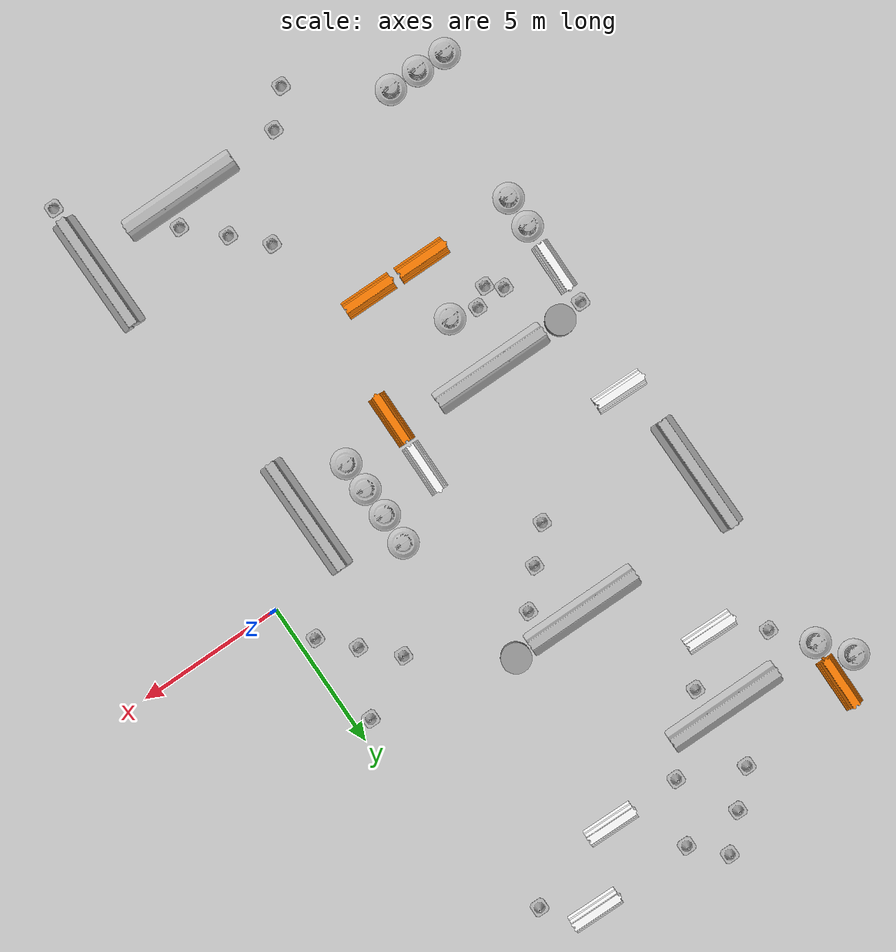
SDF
<sdf version="1.6">
 <world name="default">
  <model name="ground_plane">
   <static>1</static>
   <link name="link">
    <collision name="collision">
     <geometry><plane><normal>0 0 1</normal><size>100 100</size></plane></geometry>
     <surface>
      <contact><collide_bitmask>65535</collide_bitmask></contact>
      <friction><ode><mu>100</mu><mu2>50</mu2></ode></friction>
     </surface>
    </collision>
    <visual name="visual">
     <cast_shadows>0</cast_shadows>
     <geometry><plane><normal>0 0 1</normal><size>100 100</size></plane></geometry>
     <material>
      <script><uri>file://media/materials/scripts/gazebo.material</uri><name>Gazebo/Grey</name></script>
     </material>
    </visual>
   </link>
  </model>
  <model name="Construction Cone_0">
   <link name="link">
    <collision name="collision">
     <geometry>
      <mesh><scale>10 10 10</scale><uri>model://construction_cone/meshes/construction_cone.dae</uri></mesh>
     </geometry>
    </collision>
    <visual name="visual">
     <geometry>
      <mesh><scale>10 10 10</scale><uri>model://construction_cone/meshes/construction_cone.dae</uri></mesh>
     </geometry>
    </visual>
    <inertial>
     <inertia><ixx>1</ixx><ixy>0</ixy><ixz>0</ixz><iyy>1</iyy><iyz>0</iyz><izz>1</izz></inertia>
     <mass>1</mass>
    </inertial>
   </link>
   <pose>-7.48377 14.4957 -0 0 -1e-06 0</pose>
  </model>
  <model name="Construction Cone_0_clone">
   <link name="link">
    <collision name="collision">
     <geometry>
      <mesh><scale>10 10 10</scale><uri>model://construction_cone/meshes/construction_cone.dae</uri></mesh>
     </geometry>
    </collision>
    <visual name="visual">
     <geometry>
      <mesh><scale>10 10 10</scale><uri>model://construction_cone/meshes/construction_cone.dae</uri></mesh>
     </geometry>
    </visual>
    <inertial>
     <inertia><ixx>1</ixx><ixy>0</ixy><ixz>0</ixz><iyy>1</iyy><iyz>0</iyz><izz>1</izz></inertia>
     <mass>1</mass>
    </inertial>
   </link>
   <pose>-8.4848 13.4919 -0 0 -1e-06 0</pose>
  </model>
  <model name="Construction Cone_0_clone_1">
   <link name="link">
    <collision name="collision">
     <geometry>
      <mesh><scale>10 10 10</scale><uri>model://construction_cone/meshes/construction_cone.dae</uri></mesh>
     </geometry>
    </collision>
    <visual name="visual">
     <geometry>
      <mesh><scale>10 10 10</scale><uri>model://construction_cone/meshes/construction_cone.dae</uri></mesh>
     </geometry>
    </visual>
    <inertial>
     <inertia><ixx>1</ixx><ixy>0</ixy><ixz>0</ixz><iyy>1</iyy><iyz>0</iyz><izz>1</izz></inertia>
     <mass>1</mass>
    </inertial>
   </link>
   <pose>-6.51148 13.5032 -0 0 -1e-06 0</pose>
  </model>
  <model name="drc_practice_white_jersey_barrier_clone">
   <static>1</static>
   <link name="link">
    <visual name="visual">
     <geometry>
      <mesh><uri>model://drc_practice_white_jersey_barrier/meshes/jersey_barrier.dae</uri></mesh>
     </geometry>
    </visual>
    <collision name="collision">
     <geometry>
      <mesh><uri>model://drc_practice_white_jersey_barrier/meshes/jersey_barrier.dae</uri></mesh>
     </geometry>
    </collision>
   </link>
   <pose>-2.98815 13.5359 0 0 0 -1.58176</pose>
  </model>
  <model name="drc_practice_white_jersey_barrier_clone_clone">
   <static>1</static>
   <link name="link">
    <visual name="visual">
     <geometry>
      <mesh><uri>model://drc_practice_white_jersey_barrier/meshes/jersey_barrier.dae</uri></mesh>
     </geometry>
    </visual>
    <collision name="collision">
     <geometry>
      <mesh><uri>model://drc_practice_white_jersey_barrier/meshes/jersey_barrier.dae</uri></mesh>
     </geometry>
    </collision>
   </link>
   <pose>-4.91611 11.5688 0 0 0 -1.58176</pose>
  </model>
  <model name="Construction Cone_0_clone_1_clone">
   <link name="link">
    <collision name="collision">
     <geometry>
      <mesh><scale>10 10 10</scale><uri>model://construction_cone/meshes/construction_cone.dae</uri></mesh>
     </geometry>
    </collision>
    <visual name="visual">
     <geometry>
      <mesh><scale>10 10 10</scale><uri>model://construction_cone/meshes/construction_cone.dae</uri></mesh>
     </geometry>
    </visual>
    <inertial>
     <inertia><ixx>1</ixx><ixy>0</ixy><ixz>0</ixz><iyy>1</iyy><iyz>0</iyz><izz>1</izz></inertia>
     <mass>1</mass>
    </inertial>
   </link>
   <pose>-1.56789 12.4756 -0 0 -1e-06 0</pose>
  </model>
  <model name="Construction Cone_0_clone_0_clone">
   <link name="link">
    <collision name="collision">
     <geometry>
      <mesh><scale>10 10 10</scale><uri>model://construction_cone/meshes/construction_cone.dae</uri></mesh>
     </geometry>
    </collision>
    <visual name="visual">
     <geometry>
      <mesh><scale>10 10 10</scale><uri>model://construction_cone/meshes/construction_cone.dae</uri></mesh>
     </geometry>
    </visual>
    <inertial>
     <inertia><ixx>1</ixx><ixy>0</ixy><ixz>0</ixz><iyy>1</iyy><iyz>0</iyz><izz>1</izz></inertia>
     <mass>1</mass>
    </inertial>
   </link>
   <pose>-12.5113 9.33697 -0 0 -1e-06 0</pose>
  </model>
  <model name="jersey_barrier_clone_clone">
   <static>1</static>
   <link name="link">
    <visual name="visual">
     <geometry><mesh><uri>model://jersey_barrier/meshes/jersey_barrier.dae</uri></mesh></geometry>
    </visual>
    <collision name="upright">
     <pose>0 0 0.5715 0 -0 0</pose>
     <geometry><box><size>4.06542 0.3063 1.143</size></box></geometry>
    </collision>
    <collision name="base">
     <pose>0 0 0.032258 0 -0 0</pose>
     <geometry><box><size>4.06542 0.8107 0.064516</size></box></geometry>
    </collision>
    <collision name="base2">
     <pose>0 0 0.1 0 -0 0</pose>
     <geometry><box><size>4.06542 0.65 0.1</size></box></geometry>
    </collision>
    <collision name="base3">
     <pose>0 0 0.2 0 -0 0</pose>
     <geometry><box><size>4.06542 0.5 0.1</size></box></geometry>
    </collision>
    <collision name="left-angle">
     <pose>0 -0.224 0.2401 0.9 -0 0</pose>
     <geometry><box><size>4.06542 0.5 0.064516</size></box></geometry>
    </collision>
    <collision name="right-angle">
     <pose>0 0.224 0.2401 -0.9 0 0</pose>
     <geometry><box><size>4.06542 0.5 0.064516</size></box></geometry>
    </collision>
   </link>
   <pose>-9.9787 10.5294 0 0 -0 0</pose>
  </model>
  <model name="Construction Cone_0_clone_0_clone_clone">
   <link name="link">
    <collision name="collision">
     <geometry>
      <mesh><scale>10 10 10</scale><uri>model://construction_cone/meshes/construction_cone.dae</uri></mesh>
     </geometry>
    </collision>
    <visual name="visual">
     <geometry>
      <mesh><scale>10 10 10</scale><uri>model://construction_cone/meshes/construction_cone.dae</uri></mesh>
     </geometry>
    </visual>
    <inertial>
     <inertia><ixx>1</ixx><ixy>0</ixy><ixz>0</ixz><iyy>1</iyy><iyz>0</iyz><izz>1</izz></inertia>
     <mass>1</mass>
    </inertial>
   </link>
   <pose>-9.53841 9.57947 -0 0 -1e-06 0</pose>
  </model>
  <model name="drc_practice_white_jersey_barrier_clone_clone_clone">
   <static>1</static>
   <link name="link">
    <visual name="visual">
     <geometry>
      <mesh><uri>model://drc_practice_white_jersey_barrier/meshes/jersey_barrier.dae</uri></mesh>
     </geometry>
    </visual>
    <collision name="collision">
     <geometry>
      <mesh><uri>model://drc_practice_white_jersey_barrier/meshes/jersey_barrier.dae</uri></mesh>
     </geometry>
    </collision>
   </link>
   <pose>-10.924 8.31727 0 0 0 -1.58176</pose>
  </model>
  <model name="Construction Cone_0_clone_0_clone_clone_clone">
   <link name="link">
    <collision name="collision">
     <geometry>
      <mesh><scale>10 10 10</scale><uri>model://construction_cone/meshes/construction_cone.dae</uri></mesh>
     </geometry>
    </collision>
    <visual name="visual">
     <geometry>
      <mesh><scale>10 10 10</scale><uri>model://construction_cone/meshes/construction_cone.dae</uri></mesh>
     </geometry>
    </visual>
    <inertial>
     <inertia><ixx>1</ixx><ixy>0</ixy><ixz>0</ixz><iyy>1</iyy><iyz>0</iyz><izz>1</izz></inertia>
     <mass>1</mass>
    </inertial>
   </link>
   <pose>-7.42849 11.576 -0 0 -0 0</pose>
  </model>
  <model name="jersey_barrier_clone_clone_clone">
   <static>1</static>
   <link name="link">
    <visual name="visual">
     <geometry><mesh><uri>model://jersey_barrier/meshes/jersey_barrier.dae</uri></mesh></geometry>
    </visual>
    <collision name="upright">
     <pose>0 0 0.5715 0 -0 0</pose>
     <geometry><box><size>4.06542 0.3063 1.143</size></box></geometry>
    </collision>
    <collision name="base">
     <pose>0 0 0.032258 0 -0 0</pose>
     <geometry><box><size>4.06542 0.8107 0.064516</size></box></geometry>
    </collision>
    <collision name="base2">
     <pose>0 0 0.1 0 -0 0</pose>
     <geometry><box><size>4.06542 0.65 0.1</size></box></geometry>
    </collision>
    <collision name="base3">
     <pose>0 0 0.2 0 -0 0</pose>
     <geometry><box><size>4.06542 0.5 0.1</size></box></geometry>
    </collision>
    <collision name="left-angle">
     <pose>0 -0.224 0.2401 0.9 -0 0</pose>
     <geometry><box><size>4.06542 0.5 0.064516</size></box></geometry>
    </collision>
    <collision name="right-angle">
     <pose>0 0.224 0.2401 -0.9 0 0</pose>
     <geometry><box><size>4.06542 0.5 0.064516</size></box></geometry>
    </collision>
   </link>
   <pose>-13.4245 3.97341 0 0 0 -1.56391</pose>
  </model>
  <model name="drc_practice_white_jersey_barrier_clone_clone_clone_clone">
   <static>1</static>
   <link name="link">
    <visual name="visual">
     <geometry>
      <mesh><uri>model://drc_practice_white_jersey_barrier/meshes/jersey_barrier.dae</uri></mesh>
     </geometry>
    </visual>
    <collision name="collision">
     <geometry>
      <mesh><uri>model://drc_practice_white_jersey_barrier/meshes/jersey_barrier.dae</uri></mesh>
     </geometry>
    </collision>
   </link>
   <pose>-12.8698 0.433734 0 0 0 -1.58176</pose>
  </model>
  <model name="jersey_barrier_clone_clone_clone_0">
   <static>1</static>
   <link name="link">
    <visual name="visual">
     <geometry><mesh><uri>model://jersey_barrier/meshes/jersey_barrier.dae</uri></mesh></geometry>
    </visual>
    <collision name="upright">
     <pose>0 0 0.5715 0 -0 0</pose>
     <geometry><box><size>4.06542 0.3063 1.143</size></box></geometry>
    </collision>
    <collision name="base">
     <pose>0 0 0.032258 0 -0 0</pose>
     <geometry><box><size>4.06542 0.8107 0.064516</size></box></geometry>
    </collision>
    <collision name="base2">
     <pose>0 0 0.1 0 -0 0</pose>
     <geometry><box><size>4.06542 0.65 0.1</size></box></geometry>
    </collision>
    <collision name="base3">
     <pose>0 0 0.2 0 -0 0</pose>
     <geometry><box><size>4.06542 0.5 0.1</size></box></geometry>
    </collision>
    <collision name="left-angle">
     <pose>0 -0.224 0.2401 0.9 -0 0</pose>
     <geometry><box><size>4.06542 0.5 0.064516</size></box></geometry>
    </collision>
    <collision name="right-angle">
     <pose>0 0.224 0.2401 -0.9 0 0</pose>
     <geometry><box><size>4.06542 0.5 0.064516</size></box></geometry>
    </collision>
   </link>
   <pose>-8.01638 5.47012 0 0 -0 0</pose>
  </model>
  <model name="unit_cylinder">
   <pose>-5.42848 5.52156 0.499993 -1e-06 -0 -0</pose>
   <link name="link">
    <inertial>
     <mass>1</mass>
     <inertia><ixx>0.145833</ixx><ixy>0</ixy><ixz>0</ixz><iyy>0.145833</iyy><iyz>0</iyz><izz>0.125</izz></inertia>
    </inertial>
    <collision name="collision">
     <geometry><cylinder><radius>0.5</radius><length>1</length></cylinder></geometry>
    </collision>
    <visual name="visual">
     <geometry><cylinder><radius>0.5</radius><length>1</length></cylinder></geometry>
     <material>
      <script><name>Gazebo/Grey</name><uri>file://media/materials/scripts/gazebo.material</uri></script>
     </material>
    </visual>
   </link>
  </model>
  <model name="Construction Cone_0_clone_0_clone_clone_0">
   <link name="link">
    <collision name="collision">
     <geometry>
      <mesh><scale>10 10 10</scale><uri>model://construction_cone/meshes/construction_cone.dae</uri></mesh>
     </geometry>
    </collision>
    <visual name="visual">
     <geometry>
      <mesh><scale>10 10 10</scale><uri>model://construction_cone/meshes/construction_cone.dae</uri></mesh>
     </geometry>
    </visual>
    <inertial>
     <inertia><ixx>1</ixx><ixy>0</ixy><ixz>0</ixz><iyy>1</iyy><iyz>0</iyz><izz>1</izz></inertia>
     <mass>1</mass>
    </inertial>
   </link>
   <pose>-6.57528 4.55392 -0 0 -1e-06 0</pose>
  </model>
  <model name="Construction Cone_0_clone_0_clone_clone_1">
   <link name="link">
    <collision name="collision">
     <geometry>
      <mesh><scale>10 10 10</scale><uri>model://construction_cone/meshes/construction_cone.dae</uri></mesh>
     </geometry>
    </collision>
    <visual name="visual">
     <geometry>
      <mesh><scale>10 10 10</scale><uri>model://construction_cone/meshes/construction_cone.dae</uri></mesh>
     </geometry>
    </visual>
    <inertial>
     <inertia><ixx>1</ixx><ixy>0</ixy><ixz>0</ixz><iyy>1</iyy><iyz>0</iyz><izz>1</izz></inertia>
     <mass>1</mass>
    </inertial>
   </link>
   <pose>-7.55022 3.47181 -0 0 -1e-06 0</pose>
  </model>
  <model name="Construction Cone_0_clone_0_clone_clone_2">
   <link name="link">
    <collision name="collision">
     <geometry>
      <mesh><scale>10 10 10</scale><uri>model://construction_cone/meshes/construction_cone.dae</uri></mesh>
     </geometry>
    </collision>
    <visual name="visual">
     <geometry>
      <mesh><scale>10 10 10</scale><uri>model://construction_cone/meshes/construction_cone.dae</uri></mesh>
     </geometry>
    </visual>
    <inertial>
     <inertia><ixx>1</ixx><ixy>0</ixy><ixz>0</ixz><iyy>1</iyy><iyz>0</iyz><izz>1</izz></inertia>
     <mass>1</mass>
    </inertial>
   </link>
   <pose>-8.52384 2.47533 -0 0 -0 0</pose>
  </model>
  <model name="Construction Cone_0_clone_1_clone_1_clone">
   <link name="link">
    <collision name="collision">
     <geometry>
      <mesh><scale>10 10 10</scale><uri>model://construction_cone/meshes/construction_cone.dae</uri></mesh>
     </geometry>
    </collision>
    <visual name="visual">
     <geometry>
      <mesh><scale>10 10 10</scale><uri>model://construction_cone/meshes/construction_cone.dae</uri></mesh>
     </geometry>
    </visual>
    <inertial>
     <inertia><ixx>1</ixx><ixy>0</ixy><ixz>0</ixz><iyy>1</iyy><iyz>0</iyz><izz>1</izz></inertia>
     <mass>1</mass>
    </inertial>
   </link>
   <pose>-2.52061 3.47667 -0 0 -1e-06 0</pose>
  </model>
  <model name="Construction Cone_0_clone_1_clone_1_clone_0">
   <link name="link">
    <collision name="collision">
     <geometry>
      <mesh><scale>10 10 10</scale><uri>model://construction_cone/meshes/construction_cone.dae</uri></mesh>
     </geometry>
    </collision>
    <visual name="visual">
     <geometry>
      <mesh><scale>10 10 10</scale><uri>model://construction_cone/meshes/construction_cone.dae</uri></mesh>
     </geometry>
    </visual>
    <inertial>
     <inertia><ixx>1</ixx><ixy>0</ixy><ixz>0</ixz><iyy>1</iyy><iyz>0</iyz><izz>1</izz></inertia>
     <mass>1</mass>
    </inertial>
   </link>
   <pose>-1.49053 2.45106 -0 0 -1e-06 0</pose>
  </model>
  <model name="Construction Cone_0_clone_1_clone_1_clone_1">
   <link name="link">
    <collision name="collision">
     <geometry>
      <mesh><scale>10 10 10</scale><uri>model://construction_cone/meshes/construction_cone.dae</uri></mesh>
     </geometry>
    </collision>
    <visual name="visual">
     <geometry>
      <mesh><scale>10 10 10</scale><uri>model://construction_cone/meshes/construction_cone.dae</uri></mesh>
     </geometry>
    </visual>
    <inertial>
     <inertia><ixx>1</ixx><ixy>0</ixy><ixz>0</ixz><iyy>1</iyy><iyz>0</iyz><izz>1</izz></inertia>
     <mass>1</mass>
    </inertial>
   </link>
   <pose>-0.52873 1.44362 -0 0 -1e-06 0</pose>
  </model>
  <model name="Construction Cone_0_clone_1_clone_1_clone_clone">
   <link name="link">
    <collision name="collision">
     <geometry>
      <mesh><scale>10 10 10</scale><uri>model://construction_cone/meshes/construction_cone.dae</uri></mesh>
     </geometry>
    </collision>
    <visual name="visual">
     <geometry>
      <mesh><scale>10 10 10</scale><uri>model://construction_cone/meshes/construction_cone.dae</uri></mesh>
     </geometry>
    </visual>
    <inertial>
     <inertia><ixx>1</ixx><ixy>0</ixy><ixz>0</ixz><iyy>1</iyy><iyz>0</iyz><izz>1</izz></inertia>
     <mass>1</mass>
    </inertial>
   </link>
   <pose>-0.534948 4.5351 -0 0 -1e-06 0</pose>
  </model>
  <model name="Construction Barrel_clone_clone_0">
   <link name="link">
    <inertial>
     <pose>0 0 0.4 0 -0 0</pose>
     <mass>500</mass>
     <inertia><ixx>51.2096</ixx><iyy>51.2096</iyy><izz>25</izz><ixy>0</ixy><ixz>0</ixz><iyz>0</iyz></inertia>
    </inertial>
    <collision name="collision">
     <geometry><mesh><uri>model://construction_barrel/meshes/construction_barrel.dae</uri></mesh></geometry>
    </collision>
    <visual name="visual">
     <geometry><mesh><uri>model://construction_barrel/meshes/construction_barrel.dae</uri></mesh></geometry>
    </visual>
   </link>
   <pose>-4.52796 0.534386 -0 0 0 -0.000465</pose>
  </model>
  <model name="Construction Barrel_clone_clone_0_clone">
   <link name="link">
    <inertial>
     <pose>0 0 0.4 0 -0 0</pose>
     <mass>500</mass>
     <inertia><ixx>51.2096</ixx><iyy>51.2096</iyy><izz>25</izz><ixy>0</ixy><ixz>0</ixz><iyz>0</iyz></inertia>
    </inertial>
    <collision name="collision">
     <geometry><mesh><uri>model://construction_barrel/meshes/construction_barrel.dae</uri></mesh></geometry>
    </collision>
    <visual name="visual">
     <geometry><mesh><uri>model://construction_barrel/meshes/construction_barrel.dae</uri></mesh></geometry>
    </visual>
   </link>
   <pose>-4.54611 -0.530227 -1e-06 3e-06 -2e-06 -0.000465</pose>
  </model>
  <model name="Construction Barrel_clone_clone_0_clone_0">
   <link name="link">
    <inertial>
     <pose>0 0 0.4 0 -0 0</pose>
     <mass>500</mass>
     <inertia><ixx>51.2096</ixx><iyy>51.2096</iyy><izz>25</izz><ixy>0</ixy><ixz>0</ixz><iyz>0</iyz></inertia>
    </inertial>
    <collision name="collision">
     <geometry><mesh><uri>model://construction_barrel/meshes/construction_barrel.dae</uri></mesh></geometry>
    </collision>
    <visual name="visual">
     <geometry><mesh><uri>model://construction_barrel/meshes/construction_barrel.dae</uri></mesh></geometry>
    </visual>
   </link>
   <pose>-4.49553 -1.55079 -4e-06 -1.1e-05 -4e-06 -0.10494</pose>
  </model>
  <model name="Construction Barrel_clone_clone_0_clone_1">
   <link name="link">
    <inertial>
     <pose>0 0 0.4 0 -0 0</pose>
     <mass>500</mass>
     <inertia><ixx>51.2096</ixx><iyy>51.2096</iyy><izz>25</izz><ixy>0</ixy><ixz>0</ixz><iyz>0</iyz></inertia>
    </inertial>
    <collision name="collision">
     <geometry><mesh><uri>model://construction_barrel/meshes/construction_barrel.dae</uri></mesh></geometry>
    </collision>
    <visual name="visual">
     <geometry><mesh><uri>model://construction_barrel/meshes/construction_barrel.dae</uri></mesh></geometry>
    </visual>
   </link>
   <pose>-4.45155 -2.5627 -3e-06 -9e-06 -4e-06 0.136226</pose>
  </model>
  <model name="jersey_barrier_clone_clone_clone_clone_0">
   <static>1</static>
   <link name="link">
    <visual name="visual">
     <geometry><mesh><uri>model://jersey_barrier/meshes/jersey_barrier.dae</uri></mesh></geometry>
    </visual>
    <collision name="upright">
     <pose>0 0 0.5715 0 -0 0</pose>
     <geometry><box><size>4.06542 0.3063 1.143</size></box></geometry>
    </collision>
    <collision name="base">
     <pose>0 0 0.032258 0 -0 0</pose>
     <geometry><box><size>4.06542 0.8107 0.064516</size></box></geometry>
    </collision>
    <collision name="base2">
     <pose>0 0 0.1 0 -0 0</pose>
     <geometry><box><size>4.06542 0.65 0.1</size></box></geometry>
    </collision>
    <collision name="base3">
     <pose>0 0 0.2 0 -0 0</pose>
     <geometry><box><size>4.06542 0.5 0.1</size></box></geometry>
    </collision>
    <collision name="left-angle">
     <pose>0 -0.224 0.2401 0.9 -0 0</pose>
     <geometry><box><size>4.06542 0.5 0.064516</size></box></geometry>
    </collision>
    <collision name="right-angle">
     <pose>0 0.224 0.2401 -0.9 0 0</pose>
     <geometry><box><size>4.06542 0.5 0.064516</size></box></geometry>
    </collision>
   </link>
   <pose>-2.4845 -1.89631 0 0 0 -1.56391</pose>
  </model>
  <model name="drc_practice_white_jersey_barrier_clone_clone_clone_0">
   <static>1</static>
   <link name="link">
    <visual name="visual">
     <geometry>
      <mesh><uri>model://drc_practice_white_jersey_barrier/meshes/jersey_barrier.dae</uri></mesh>
     </geometry>
    </visual>
    <collision name="collision">
     <geometry>
      <mesh><uri>model://drc_practice_white_jersey_barrier/meshes/jersey_barrier.dae</uri></mesh>
     </geometry>
    </collision>
   </link>
   <pose>-6.44119 -1.03905 0 0 -0 3.13979</pose>
  </model>
  <model name="drc_practice_organge_jersey_barrier_clone_clone_0">
   <static>1</static>
   <link name="link">
    <visual name="visual">
     <geometry>
      <mesh><uri>model://drc_practice_orange_jersey_barrier/meshes/jersey_barrier.dae</uri></mesh>
     </geometry>
    </visual>
    <collision name="collision">
     <geometry>
      <mesh><uri>model://drc_practice_orange_jersey_barrier/meshes/jersey_barrier.dae</uri></mesh>
     </geometry>
    </collision>
   </link>
   <pose>-6.44531 -2.89491 0 0 -0 0</pose>
  </model>
  <model name="jersey_barrier_clone_clone_clone_0_clone">
   <static>1</static>
   <link name="link">
    <visual name="visual">
     <geometry><mesh><uri>model://jersey_barrier/meshes/jersey_barrier.dae</uri></mesh></geometry>
    </visual>
    <collision name="upright">
     <pose>0 0 0.5715 0 -0 0</pose>
     <geometry><box><size>4.06542 0.3063 1.143</size></box></geometry>
    </collision>
    <collision name="base">
     <pose>0 0 0.032258 0 -0 0</pose>
     <geometry><box><size>4.06542 0.8107 0.064516</size></box></geometry>
    </collision>
    <collision name="base2">
     <pose>0 0 0.1 0 -0 0</pose>
     <geometry><box><size>4.06542 0.65 0.1</size></box></geometry>
    </collision>
    <collision name="base3">
     <pose>0 0 0.2 0 -0 0</pose>
     <geometry><box><size>4.06542 0.5 0.1</size></box></geometry>
    </collision>
    <collision name="left-angle">
     <pose>0 -0.224 0.2401 0.9 -0 0</pose>
     <geometry><box><size>4.06542 0.5 0.064516</size></box></geometry>
    </collision>
    <collision name="right-angle">
     <pose>0 0.224 0.2401 -0.9 0 0</pose>
     <geometry><box><size>4.06542 0.5 0.064516</size></box></geometry>
    </collision>
   </link>
   <pose>-9.94941 -2.47062 0 0 -0 0</pose>
  </model>
  <model name="unit_cylinder_clone_clone">
   <pose>-12.5901 -2.46586 0.499996 1e-06 -0 0</pose>
   <link name="link">
    <inertial>
     <mass>1</mass>
     <inertia><ixx>0.145833</ixx><ixy>0</ixy><ixz>0</ixz><iyy>0.145833</iyy><iyz>0</iyz><izz>0.125</izz></inertia>
    </inertial>
    <collision name="collision">
     <geometry><cylinder><radius>0.5</radius><length>1</length></cylinder></geometry>
    </collision>
    <visual name="visual">
     <geometry><cylinder><radius>0.5</radius><length>1</length></cylinder></geometry>
     <material>
      <script><name>Gazebo/Grey</name><uri>file://media/materials/scripts/gazebo.material</uri></script>
     </material>
    </visual>
   </link>
  </model>
  <model name="Construction Cone_0_clone_0_clone_clone_1_clone">
   <link name="link">
    <collision name="collision">
     <geometry>
      <mesh><scale>10 10 10</scale><uri>model://construction_cone/meshes/construction_cone.dae</uri></mesh>
     </geometry>
    </collision>
    <visual name="visual">
     <geometry>
      <mesh><scale>10 10 10</scale><uri>model://construction_cone/meshes/construction_cone.dae</uri></mesh>
     </geometry>
    </visual>
    <inertial>
     <inertia><ixx>1</ixx><ixy>0</ixy><ixz>0</ixz><iyy>1</iyy><iyz>0</iyz><izz>1</izz></inertia>
     <mass>1</mass>
    </inertial>
   </link>
   <pose>-13.4723 -2.59321 -0 0 -0 0</pose>
  </model>
  <model name="drc_practice_white_jersey_barrier_clone_clone_clone_0_clone">
   <static>1</static>
   <link name="link">
    <visual name="visual">
     <geometry>
      <mesh><uri>model://drc_practice_white_jersey_barrier/meshes/jersey_barrier.dae</uri></mesh>
     </geometry>
    </visual>
    <collision name="collision">
     <geometry>
      <mesh><uri>model://drc_practice_white_jersey_barrier/meshes/jersey_barrier.dae</uri></mesh>
     </geometry>
    </collision>
   </link>
   <pose>-13.407 -3.97119 0 0 -0 3.13979</pose>
  </model>
  <model name="Construction Barrel_clone_clone_0_clone_1_clone">
   <link name="link">
    <inertial>
     <pose>0 0 0.4 0 -0 0</pose>
     <mass>500</mass>
     <inertia><ixx>51.2096</ixx><iyy>51.2096</iyy><izz>25</izz><ixy>0</ixy><ixz>0</ixz><iyz>0</iyz></inertia>
    </inertial>
    <collision name="collision">
     <geometry><mesh><uri>model://construction_barrel/meshes/construction_barrel.dae</uri></mesh></geometry>
    </collision>
    <visual name="visual">
     <geometry><mesh><uri>model://construction_barrel/meshes/construction_barrel.dae</uri></mesh></geometry>
    </visual>
   </link>
   <pose>-13.4416 -5.51583 -1e-06 2e-06 -1e-06 0.084572</pose>
  </model>
  <model name="Construction Barrel_clone_clone_0_clone_1_clone_0">
   <link name="link">
    <inertial>
     <pose>0 0 0.4 0 -0 0</pose>
     <mass>500</mass>
     <inertia><ixx>51.2096</ixx><iyy>51.2096</iyy><izz>25</izz><ixy>0</ixy><ixz>0</ixz><iyz>0</iyz></inertia>
    </inertial>
    <collision name="collision">
     <geometry><mesh><uri>model://construction_barrel/meshes/construction_barrel.dae</uri></mesh></geometry>
    </collision>
    <visual name="visual">
     <geometry><mesh><uri>model://construction_barrel/meshes/construction_barrel.dae</uri></mesh></geometry>
    </visual>
   </link>
   <pose>-13.4458 -6.5869 -1e-06 2e-06 -1e-06 0.084567</pose>
  </model>
  <model name="Construction Cone_0_clone_1_clone_1_clone_1_clone">
   <link name="link">
    <collision name="collision">
     <geometry>
      <mesh><scale>10 10 10</scale><uri>model://construction_cone/meshes/construction_cone.dae</uri></mesh>
     </geometry>
    </collision>
    <visual name="visual">
     <geometry>
      <mesh><scale>10 10 10</scale><uri>model://construction_cone/meshes/construction_cone.dae</uri></mesh>
     </geometry>
    </visual>
    <inertial>
     <inertia><ixx>1</ixx><ixy>0</ixy><ixz>0</ixz><iyy>1</iyy><iyz>0</iyz><izz>1</izz></inertia>
     <mass>1</mass>
    </inertial>
   </link>
   <pose>-11.7312 -4.3412 -0 0 -1e-06 0</pose>
  </model>
  <model name="Construction Cone_0_clone_1_clone_1_clone_1_clone_0">
   <link name="link">
    <collision name="collision">
     <geometry>
      <mesh><scale>10 10 10</scale><uri>model://construction_cone/meshes/construction_cone.dae</uri></mesh>
     </geometry>
    </collision>
    <visual name="visual">
     <geometry>
      <mesh><scale>10 10 10</scale><uri>model://construction_cone/meshes/construction_cone.dae</uri></mesh>
     </geometry>
    </visual>
    <inertial>
     <inertia><ixx>1</ixx><ixy>0</ixy><ixz>0</ixz><iyy>1</iyy><iyz>0</iyz><izz>1</izz></inertia>
     <mass>1</mass>
    </inertial>
   </link>
   <pose>-11.2487 -4.72143 -0 -0 -1e-06 0.001365</pose>
  </model>
  <model name="Construction Cone_0_clone_1_clone_1_clone_1_clone_1">
   <link name="link">
    <collision name="collision">
     <geometry>
      <mesh><scale>10 10 10</scale><uri>model://construction_cone/meshes/construction_cone.dae</uri></mesh>
     </geometry>
    </collision>
    <visual name="visual">
     <geometry>
      <mesh><scale>10 10 10</scale><uri>model://construction_cone/meshes/construction_cone.dae</uri></mesh>
     </geometry>
    </visual>
    <inertial>
     <inertia><ixx>1</ixx><ixy>0</ixy><ixz>0</ixz><iyy>1</iyy><iyz>0</iyz><izz>1</izz></inertia>
     <mass>1</mass>
    </inertial>
   </link>
   <pose>-10.6914 -4.28844 -0 0 -1e-06 0.001473</pose>
  </model>
  <model name="Construction Barrel_clone_clone_0_clone_1_clone_1">
   <link name="link">
    <inertial>
     <pose>0 0 0.4 0 -0 0</pose>
     <mass>500</mass>
     <inertia><ixx>51.2096</ixx><iyy>51.2096</iyy><izz>25</izz><ixy>0</ixy><ixz>0</ixz><iyz>0</iyz></inertia>
    </inertial>
    <collision name="collision">
     <geometry><mesh><uri>model://construction_barrel/meshes/construction_barrel.dae</uri></mesh></geometry>
    </collision>
    <visual name="visual">
     <geometry><mesh><uri>model://construction_barrel/meshes/construction_barrel.dae</uri></mesh></geometry>
    </visual>
   </link>
   <pose>-9.75812 -4.48369 -2e-06 1e-06 8e-06 0.084596</pose>
  </model>
  <model name="drc_practice_organge_jersey_barrier_clone_clone_clone_0">
   <static>1</static>
   <link name="link">
    <visual name="visual">
     <geometry>
      <mesh><uri>model://drc_practice_orange_jersey_barrier/meshes/jersey_barrier.dae</uri></mesh>
     </geometry>
    </visual>
    <collision name="collision">
     <geometry>
      <mesh><uri>model://drc_practice_orange_jersey_barrier/meshes/jersey_barrier.dae</uri></mesh>
     </geometry>
    </collision>
   </link>
   <pose>-10.0701 -6.50529 0 0 0 -1.56865</pose>
  </model>
  <model name="drc_practice_organge_jersey_barrier_clone_clone_clone_1">
   <static>1</static>
   <link name="link">
    <visual name="visual">
     <geometry>
      <mesh><uri>model://drc_practice_orange_jersey_barrier/meshes/jersey_barrier.dae</uri></mesh>
     </geometry>
    </visual>
    <collision name="collision">
     <geometry>
      <mesh><uri>model://drc_practice_orange_jersey_barrier/meshes/jersey_barrier.dae</uri></mesh>
     </geometry>
    </collision>
   </link>
   <pose>-8.04985 -6.52699 0 0 0 -1.56865</pose>
  </model>
  <model name="Construction Barrel_clone_clone_0_clone_1_clone_1_clone">
   <link name="link">
    <inertial>
     <pose>0 0 0.4 0 -0 0</pose>
     <mass>500</mass>
     <inertia><ixx>51.2096</ixx><iyy>51.2096</iyy><izz>25</izz><ixy>0</ixy><ixz>0</ixz><iyz>0</iyz></inertia>
    </inertial>
    <collision name="collision">
     <geometry><mesh><uri>model://construction_barrel/meshes/construction_barrel.dae</uri></mesh></geometry>
    </collision>
    <visual name="visual">
     <geometry><mesh><uri>model://construction_barrel/meshes/construction_barrel.dae</uri></mesh></geometry>
    </visual>
   </link>
   <pose>-14.367 -11.5122 -2e-06 -1e-05 -4e-06 0.061069</pose>
  </model>
  <model name="Construction Barrel_clone_clone_0_clone_1_clone_1_clone_0">
   <link name="link">
    <inertial>
     <pose>0 0 0.4 0 -0 0</pose>
     <mass>500</mass>
     <inertia><ixx>51.2096</ixx><iyy>51.2096</iyy><izz>25</izz><ixy>0</ixy><ixz>0</ixz><iyz>0</iyz></inertia>
    </inertial>
    <collision name="collision">
     <geometry><mesh><uri>model://construction_barrel/meshes/construction_barrel.dae</uri></mesh></geometry>
    </collision>
    <visual name="visual">
     <geometry><mesh><uri>model://construction_barrel/meshes/construction_barrel.dae</uri></mesh></geometry>
    </visual>
   </link>
   <pose>-13.3528 -11.5321 -0 0 -0 0.097509</pose>
  </model>
  <model name="Construction Barrel_clone_clone_0_clone_1_clone_1_clone_1">
   <link name="link">
    <inertial>
     <pose>0 0 0.4 0 -0 0</pose>
     <mass>500</mass>
     <inertia><ixx>51.2096</ixx><iyy>51.2096</iyy><izz>25</izz><ixy>0</ixy><ixz>0</ixz><iyz>0</iyz></inertia>
    </inertial>
    <collision name="collision">
     <geometry><mesh><uri>model://construction_barrel/meshes/construction_barrel.dae</uri></mesh></geometry>
    </collision>
    <visual name="visual">
     <geometry><mesh><uri>model://construction_barrel/meshes/construction_barrel.dae</uri></mesh></geometry>
    </visual>
   </link>
   <pose>-12.3153 -11.5283 -2e-06 0 7e-06 0.084577</pose>
  </model>
  <model name="Construction Cone_0_clone_1_clone_1_clone_1_clone_clone_3_clone_clone_clone">
   <link name="link">
    <collision name="collision">
     <geometry>
      <mesh><scale>10 10 10</scale><uri>model://construction_cone/meshes/construction_cone.dae</uri></mesh>
     </geometry>
    </collision>
    <visual name="visual">
     <geometry>
      <mesh><scale>10 10 10</scale><uri>model://construction_cone/meshes/construction_cone.dae</uri></mesh>
     </geometry>
    </visual>
    <inertial>
     <inertia><ixx>1</ixx><ixy>0</ixy><ixz>0</ixz><iyy>1</iyy><iyz>0</iyz><izz>1</izz></inertia>
     <mass>1</mass>
    </inertial>
   </link>
   <pose>-9.51205 -13.5851 -0 0 -1e-06 0</pose>
  </model>
  <model name="Construction Cone_0_clone_1_clone_1_clone_1_clone_clone_3_clone_clone_clone_0">
   <link name="link">
    <collision name="collision">
     <geometry>
      <mesh><scale>10 10 10</scale><uri>model://construction_cone/meshes/construction_cone.dae</uri></mesh>
     </geometry>
    </collision>
    <visual name="visual">
     <geometry>
      <mesh><scale>10 10 10</scale><uri>model://construction_cone/meshes/construction_cone.dae</uri></mesh>
     </geometry>
    </visual>
    <inertial>
     <inertia><ixx>1</ixx><ixy>0</ixy><ixz>0</ixz><iyy>1</iyy><iyz>0</iyz><izz>1</izz></inertia>
     <mass>1</mass>
    </inertial>
   </link>
   <pose>-8.54413 -12.5756 -0 0 -1e-06 0</pose>
  </model>
  <model name="jersey_barrier_clone_clone_clone_0_clone_clone">
   <static>1</static>
   <link name="link">
    <visual name="visual">
     <geometry><mesh><uri>model://jersey_barrier/meshes/jersey_barrier.dae</uri></mesh></geometry>
    </visual>
    <collision name="upright">
     <pose>0 0 0.5715 0 -0 0</pose>
     <geometry><box><size>4.06542 0.3063 1.143</size></box></geometry>
    </collision>
    <collision name="base">
     <pose>0 0 0.032258 0 -0 0</pose>
     <geometry><box><size>4.06542 0.8107 0.064516</size></box></geometry>
    </collision>
    <collision name="base2">
     <pose>0 0 0.1 0 -0 0</pose>
     <geometry><box><size>4.06542 0.65 0.1</size></box></geometry>
    </collision>
    <collision name="base3">
     <pose>0 0 0.2 0 -0 0</pose>
     <geometry><box><size>4.06542 0.5 0.1</size></box></geometry>
    </collision>
    <collision name="left-angle">
     <pose>0 -0.224 0.2401 0.9 -0 0</pose>
     <geometry><box><size>4.06542 0.5 0.064516</size></box></geometry>
    </collision>
    <collision name="right-angle">
     <pose>0 0.224 0.2401 -0.9 0 0</pose>
     <geometry><box><size>4.06542 0.5 0.064516</size></box></geometry>
    </collision>
   </link>
   <pose>-4.92383 -12.5227 0 0 -0 0</pose>
  </model>
  <model name="Construction Cone_0_clone_1_clone_1_clone_1_clone_clone_3_clone_clone_clone_0_clone">
   <link name="link">
    <collision name="collision">
     <geometry>
      <mesh><scale>10 10 10</scale><uri>model://construction_cone/meshes/construction_cone.dae</uri></mesh>
     </geometry>
    </collision>
    <visual name="visual">
     <geometry>
      <mesh><scale>10 10 10</scale><uri>model://construction_cone/meshes/construction_cone.dae</uri></mesh>
     </geometry>
    </visual>
    <inertial>
     <inertia><ixx>1</ixx><ixy>0</ixy><ixz>0</ixz><iyy>1</iyy><iyz>0</iyz><izz>1</izz></inertia>
     <mass>1</mass>
    </inertial>
   </link>
   <pose>-4.32957 -11.7192 -0 0 -1e-06 0</pose>
  </model>
  <model name="Construction Cone_0_clone_1_clone_1_clone_1_clone_clone_3_clone_clone_clone_0_clone_0">
   <link name="link">
    <collision name="collision">
     <geometry>
      <mesh><scale>10 10 10</scale><uri>model://construction_cone/meshes/construction_cone.dae</uri></mesh>
     </geometry>
    </collision>
    <visual name="visual">
     <geometry>
      <mesh><scale>10 10 10</scale><uri>model://construction_cone/meshes/construction_cone.dae</uri></mesh>
     </geometry>
    </visual>
    <inertial>
     <inertia><ixx>1</ixx><ixy>0</ixy><ixz>0</ixz><iyy>1</iyy><iyz>0</iyz><izz>1</izz></inertia>
     <mass>1</mass>
    </inertial>
   </link>
   <pose>-5.46131 -10.6254 -0 0 -1e-06 0</pose>
  </model>
  <model name="Construction Cone_0_clone_1_clone_1_clone_1_clone_clone_3_clone_clone_clone_0_clone_1">
   <link name="link">
    <collision name="collision">
     <geometry>
      <mesh><scale>10 10 10</scale><uri>model://construction_cone/meshes/construction_cone.dae</uri></mesh>
     </geometry>
    </collision>
    <visual name="visual">
     <geometry>
      <mesh><scale>10 10 10</scale><uri>model://construction_cone/meshes/construction_cone.dae</uri></mesh>
     </geometry>
    </visual>
    <inertial>
     <inertia><ixx>1</ixx><ixy>0</ixy><ixz>0</ixz><iyy>1</iyy><iyz>0</iyz><izz>1</izz></inertia>
     <mass>1</mass>
    </inertial>
   </link>
   <pose>-6.45335 -9.62234 -0 0 -1e-06 0</pose>
  </model>
  <model name="jersey_barrier_clone_clone_clone_clone_0_clone_clone">
   <static>1</static>
   <link name="link">
    <visual name="visual">
     <geometry><mesh><uri>model://jersey_barrier/meshes/jersey_barrier.dae</uri></mesh></geometry>
    </visual>
    <collision name="upright">
     <pose>0 0 0.5715 0 -0 0</pose>
     <geometry><box><size>4.06542 0.3063 1.143</size></box></geometry>
    </collision>
    <collision name="base">
     <pose>0 0 0.032258 0 -0 0</pose>
     <geometry><box><size>4.06542 0.8107 0.064516</size></box></geometry>
    </collision>
    <collision name="base2">
     <pose>0 0 0.1 0 -0 0</pose>
     <geometry><box><size>4.06542 0.65 0.1</size></box></geometry>
    </collision>
    <collision name="base3">
     <pose>0 0 0.2 0 -0 0</pose>
     <geometry><box><size>4.06542 0.5 0.1</size></box></geometry>
    </collision>
    <collision name="left-angle">
     <pose>0 -0.224 0.2401 0.9 -0 0</pose>
     <geometry><box><size>4.06542 0.5 0.064516</size></box></geometry>
    </collision>
    <collision name="right-angle">
     <pose>0 0.224 0.2401 -0.9 0 0</pose>
     <geometry><box><size>4.06542 0.5 0.064516</size></box></geometry>
    </collision>
   </link>
   <pose>-1.4066 -11.934 0 0 0 -1.56391</pose>
  </model>
  <model name="Construction Cone_0_clone_1_clone_1_clone_1_clone_clone_3_clone_clone_clone_1">
   <link name="link">
    <collision name="collision">
     <geometry>
      <mesh><scale>10 10 10</scale><uri>model://construction_cone/meshes/construction_cone.dae</uri></mesh>
     </geometry>
    </collision>
    <visual name="visual">
     <geometry>
      <mesh><scale>10 10 10</scale><uri>model://construction_cone/meshes/construction_cone.dae</uri></mesh>
     </geometry>
    </visual>
    <inertial>
     <inertia><ixx>1</ixx><ixy>0</ixy><ixz>0</ixz><iyy>1</iyy><iyz>0</iyz><izz>1</izz></inertia>
     <mass>1</mass>
    </inertial>
   </link>
   <pose>-1.39212 -14.4571 -0 0 -1e-06 0</pose>
  </model>
  <model name="Construction_Barrel_clone_0">
   <link name="link">
    <inertial>
     <pose>0 0 0.4 0 -0 0</pose>
     <mass>500</mass>
     <inertia><ixx>51.2096</ixx><iyy>51.2096</iyy><izz>25</izz><ixy>0</ixy><ixz>0</ixz><iyz>0</iyz></inertia>
    </inertial>
    <visual name="visual">
     <geometry><mesh><uri>model://construction_barrel/meshes/construction_barrel.dae</uri></mesh></geometry>
     <material><shader type="pixel"/></material>
    </visual>
    <collision name="collision">
     <geometry>
      <mesh>
       <uri>/home/aaron/.gazebo/models/construction_barrel/meshes/construction_barrel.dae</uri>
       <scale>1 1 1</scale>
      </mesh>
     </geometry>
     <surface>
      <friction>
       <ode><mu>1</mu><mu2>1</mu2><fdir1>0 0 0</fdir1><slip1>0</slip1><slip2>0</slip2></ode>
       <torsional>
        <coefficient>1</coefficient>
        <patch_radius>0</patch_radius>
        <surface_radius>0</surface_radius>
        <use_patch_radius>1</use_patch_radius>
        <ode><slip>0</slip></ode>
       </torsional>
      </friction>
      <bounce><restitution_coefficient>0</restitution_coefficient><threshold>1e+06</threshold></bounce>
      <contact>
       <collide_without_contact>0</collide_without_contact>
       <collide_without_contact_bitmask>1</collide_without_contact_bitmask>
       <collide_bitmask>1</collide_bitmask>
       <ode>
        <soft_cfm>0</soft_cfm>
        <soft_erp>0.2</soft_erp>
        <kp>1e+13</kp>
        <kd>1</kd>
        <max_vel>0.01</max_vel>
        <min_depth>0</min_depth>
       </ode>
       <bullet>
        <split_impulse>1</split_impulse>
        <split_impulse_penetration_threshold>-0.01</split_impulse_penetration_threshold>
        <soft_cfm>0</soft_cfm>
        <soft_erp>0.2</soft_erp>
        <kp>1e+13</kp>
        <kd>1</kd>
       </bullet>
      </contact>
     </surface>
    </collision>
   </link>
   <static>1</static>
   <pose>-14.3004 11.4997 -2e-06 -5e-06 -4e-06 -0.041604</pose>
  </model>
  <model name="drc_practice_organge_jersey_barrier_clone">
   <link name="link">
    <visual name="visual">
     <geometry>
      <mesh><uri>model://drc_practice_orange_jersey_barrier/meshes/jersey_barrier.dae</uri></mesh>
     </geometry>
     <material><shader type="pixel"/></material>
    </visual>
    <collision name="collision">
     <geometry>
      <mesh>
       <uri>/home/aaron/.gazebo/models/drc_practice_orange_jersey_barrier/meshes/jersey_barrier.dae</uri>
       <scale>1 1 1</scale>
      </mesh>
     </geometry>
     <surface>
      <friction>
       <ode><mu>1</mu><mu2>1</mu2><fdir1>0 0 0</fdir1><slip1>0</slip1><slip2>0</slip2></ode>
       <torsional>
        <coefficient>1</coefficient>
        <patch_radius>0</patch_radius>
        <surface_radius>0</surface_radius>
        <use_patch_radius>1</use_patch_radius>
        <ode><slip>0</slip></ode>
       </torsional>
      </friction>
      <bounce><restitution_coefficient>0</restitution_coefficient><threshold>1e+06</threshold></bounce>
      <contact>
       <collide_without_contact>0</collide_without_contact>
       <collide_without_contact_bitmask>1</collide_without_contact_bitmask>
       <collide_bitmask>1</collide_bitmask>
       <ode>
        <soft_cfm>0</soft_cfm>
        <soft_erp>0.2</soft_erp>
        <kp>1e+13</kp>
        <kd>1</kd>
        <max_vel>0.01</max_vel>
        <min_depth>0</min_depth>
       </ode>
       <bullet>
        <split_impulse>1</split_impulse>
        <split_impulse_penetration_threshold>-0.01</split_impulse_penetration_threshold>
        <soft_cfm>0</soft_cfm>
        <soft_erp>0.2</soft_erp>
        <kp>1e+13</kp>
        <kd>1</kd>
       </bullet>
      </contact>
     </surface>
    </collision>
   </link>
   <static>1</static>
   <pose>-13.4204 11.963 0 0 -0 0</pose>
  </model>
  <model name="Construction_Barrel_clone">
   <link name="link">
    <inertial>
     <pose>0 0 0.4 0 -0 0</pose>
     <mass>500</mass>
     <inertia><ixx>51.2096</ixx><iyy>51.2096</iyy><izz>25</izz><ixy>0</ixy><ixz>0</ixz><iyz>0</iyz></inertia>
    </inertial>
    <visual name="visual">
     <geometry><mesh><uri>model://construction_barrel/meshes/construction_barrel.dae</uri></mesh></geometry>
     <material><shader type="pixel"/></material>
    </visual>
    <collision name="collision">
     <geometry>
      <mesh>
       <uri>/home/aaron/.gazebo/models/construction_barrel/meshes/construction_barrel.dae</uri>
       <scale>1 1 1</scale>
      </mesh>
     </geometry>
     <surface>
      <friction>
       <ode><mu>1</mu><mu2>1</mu2><fdir1>0 0 0</fdir1><slip1>0</slip1><slip2>0</slip2></ode>
       <torsional>
        <coefficient>1</coefficient>
        <patch_radius>0</patch_radius>
        <surface_radius>0</surface_radius>
        <use_patch_radius>1</use_patch_radius>
        <ode><slip>0</slip></ode>
       </torsional>
      </friction>
      <bounce><restitution_coefficient>0</restitution_coefficient><threshold>1e+06</threshold></bounce>
      <contact>
       <collide_without_contact>0</collide_without_contact>
       <collide_without_contact_bitmask>1</collide_without_contact_bitmask>
       <collide_bitmask>1</collide_bitmask>
       <ode>
        <soft_cfm>0</soft_cfm>
        <soft_erp>0.2</soft_erp>
        <kp>1e+13</kp>
        <kd>1</kd>
        <max_vel>0.01</max_vel>
        <min_depth>0</min_depth>
       </ode>
       <bullet>
        <split_impulse>1</split_impulse>
        <split_impulse_penetration_threshold>-0.01</split_impulse_penetration_threshold>
        <soft_cfm>0</soft_cfm>
        <soft_erp>0.2</soft_erp>
        <kp>1e+13</kp>
        <kd>1</kd>
       </bullet>
      </contact>
     </surface>
    </collision>
   </link>
   <static>1</static>
   <pose>-13.512 10.5125 0 0 0 -0.000422</pose>
  </model>
  <model name="Construction_Cone_0_clone_0">
   <link name="link">
    <inertial>
     <inertia><ixx>1</ixx><ixy>0</ixy><ixz>0</ixz><iyy>1</iyy><iyz>0</iyz><izz>1</izz></inertia>
     <mass>1</mass>
    </inertial>
    <visual name="visual">
     <geometry>
      <mesh><scale>10 10 10</scale><uri>model://construction_cone/meshes/construction_cone.dae</uri></mesh>
     </geometry>
     <material><shader type="pixel"/></material>
    </visual>
    <collision name="collision">
     <geometry>
      <mesh>
       <uri>/home/aaron/.gazebo/models/construction_cone/meshes/construction_cone.dae</uri>
       <scale>10 10 10</scale>
      </mesh>
     </geometry>
     <surface>
      <friction>
       <ode><mu>1</mu><mu2>1</mu2><fdir1>0 0 0</fdir1><slip1>0</slip1><slip2>0</slip2></ode>
       <torsional>
        <coefficient>1</coefficient>
        <patch_radius>0</patch_radius>
        <surface_radius>0</surface_radius>
        <use_patch_radius>1</use_patch_radius>
        <ode><slip>0</slip></ode>
       </torsional>
      </friction>
      <bounce><restitution_coefficient>0</restitution_coefficient><threshold>1e+06</threshold></bounce>
      <contact>
       <collide_without_contact>0</collide_without_contact>
       <collide_without_contact_bitmask>1</collide_without_contact_bitmask>
       <collide_bitmask>1</collide_bitmask>
       <ode>
        <soft_cfm>0</soft_cfm>
        <soft_erp>0.2</soft_erp>
        <kp>1e+13</kp>
        <kd>1</kd>
        <max_vel>0.01</max_vel>
        <min_depth>0</min_depth>
       </ode>
       <bullet>
        <split_impulse>1</split_impulse>
        <split_impulse_penetration_threshold>-0.01</split_impulse_penetration_threshold>
        <soft_cfm>0</soft_cfm>
        <soft_erp>0.2</soft_erp>
        <kp>1e+13</kp>
        <kd>1</kd>
       </bullet>
      </contact>
     </surface>
    </collision>
   </link>
   <static>1</static>
   <pose>-9.5067 12.4947 0 0 -0 0</pose>
  </model>
 </world>
</sdf>
